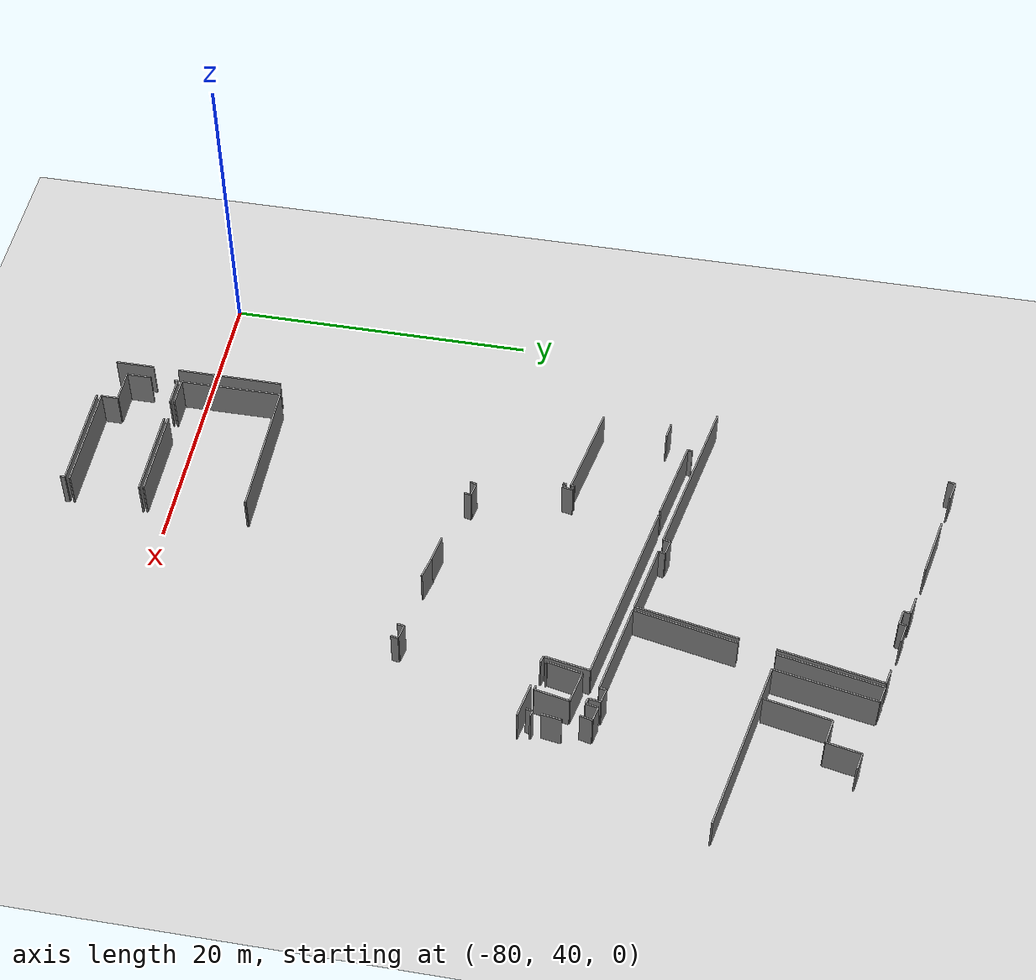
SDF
<sdf version="1.6">
 <world name="default">
  <model name="ground_plane">
   <static>1</static>
   <link name="link">
    <collision name="collision">
     <geometry><plane><normal>0 0 1</normal><size>100 100</size></plane></geometry>
     <surface><friction><ode><mu>100</mu><mu2>50</mu2></ode></friction></surface>
    </collision>
    <visual name="visual">
     <cast_shadows>0</cast_shadows>
     <geometry><plane><normal>0 0 1</normal><size>100 100</size></plane></geometry>
     <material>
      <script><uri>file://media/materials/scripts/gazebo.material</uri><name>Gazebo/Grey</name></script>
     </material>
    </visual>
   </link>
  </model>
  <model name="0510045922_A-40">
   <static>1</static>
   <link name="Wall_85">
    <collision name="Wall_85_Collision">
     <geometry><box><size>0.470527788485 0.1 2.5</size></box></geometry>
     <pose>0.235263894243 0 1.25 0 0 0</pose>
    </collision>
    <visual name="Wall_85_Visual">
     <pose>0.235263894243 0 1.25 0 0 0</pose>
     <geometry><box><size>0.470527788485 0.1 2.5</size></box></geometry>
     <material>
      <script><uri>file://media/materials/scripts/gazebo.material</uri><name>Gazebo/Grey</name></script>
      <ambient>1 1 1 1</ambient>
     </material>
    </visual>
    <pose>63.0118065705 -12.0720340599 0 0 0 1.36736206505</pose>
   </link>
   <link name="Wall_86">
    <collision name="Wall_86_Collision">
     <geometry><box><size>1.2657326112 0.1 2.5</size></box></geometry>
     <pose>0.632866305599 0 1.25 0 0 0</pose>
    </collision>
    <visual name="Wall_86_Visual">
     <pose>0.632866305599 0 1.25 0 0 0</pose>
     <geometry><box><size>1.2657326112 0.1 2.5</size></box></geometry>
     <material>
      <script><uri>file://media/materials/scripts/gazebo.material</uri><name>Gazebo/Grey</name></script>
      <ambient>1 1 1 1</ambient>
     </material>
    </visual>
    <pose>63.1068691618 -11.6112092521 0 0 0 -0.2044451851</pose>
   </link>
   <link name="Wall_87">
    <collision name="Wall_87_Collision">
     <geometry><box><size>3.95038757422 0.1 2.5</size></box></geometry>
     <pose>1.97519378711 0 1.25 0 0 0</pose>
    </collision>
    <visual name="Wall_87_Visual">
     <pose>1.97519378711 0 1.25 0 0 0</pose>
     <geometry><box><size>3.95038757422 0.1 2.5</size></box></geometry>
     <material>
      <script><uri>file://media/materials/scripts/gazebo.material</uri><name>Gazebo/Grey</name></script>
      <ambient>1 1 1 1</ambient>
     </material>
    </visual>
    <pose>66.542593887 -12.2832560208 0 0 0 -0.197723643828</pose>
   </link>
   <link name="Wall_88">
    <collision name="Wall_88_Collision">
     <geometry><box><size>1.24017899547 0.1 2.5</size></box></geometry>
     <pose>0.620089497734 0 1.25 0 0 0</pose>
    </collision>
    <visual name="Wall_88_Visual">
     <pose>0.620089497734 0 1.25 0 0 0</pose>
     <geometry><box><size>1.24017899547 0.1 2.5</size></box></geometry>
     <material>
      <script><uri>file://media/materials/scripts/gazebo.material</uri><name>Gazebo/Grey</name></script>
      <ambient>1 1 1 1</ambient>
     </material>
    </visual>
    <pose>72.6891275338 -13.4875516299 0 0 0 -0.196792641799</pose>
   </link>
   <link name="Wall_89">
    <collision name="Wall_89_Collision">
     <geometry><box><size>0.444732933613 0.1 2.5</size></box></geometry>
     <pose>0.222366466807 0 1.25 0 0 0</pose>
    </collision>
    <visual name="Wall_89_Visual">
     <pose>0.222366466807 0 1.25 0 0 0</pose>
     <geometry><box><size>0.444732933613 0.1 2.5</size></box></geometry>
     <material>
      <script><uri>file://media/materials/scripts/gazebo.material</uri><name>Gazebo/Grey</name></script>
      <ambient>1 1 1 1</ambient>
     </material>
    </visual>
    <pose>73.9053695113 -13.7300374913 0 0 0 -1.65146948263</pose>
   </link>
   <link name="Wall_90">
    <collision name="Wall_90_Collision">
     <geometry><box><size>0.945616723904 0.1 2.5</size></box></geometry>
     <pose>0.472808361952 0 1.25 0 0 0</pose>
    </collision>
    <visual name="Wall_90_Visual">
     <pose>0.472808361952 0 1.25 0 0 0</pose>
     <geometry><box><size>0.945616723904 0.1 2.5</size></box></geometry>
     <material>
      <script><uri>file://media/materials/scripts/gazebo.material</uri><name>Gazebo/Grey</name></script>
      <ambient>1 1 1 1</ambient>
     </material>
    </visual>
    <pose>73.869530406 -14.1733240135 0 0 0 -0.206831728713</pose>
   </link>
   <link name="Wall_91">
    <collision name="Wall_91_Collision">
     <geometry><box><size>0.440850563217 0.1 2.5</size></box></geometry>
     <pose>0.220425281608 0 1.25 0 0 0</pose>
    </collision>
    <visual name="Wall_91_Visual">
     <pose>0.220425281608 0 1.25 0 0 0</pose>
     <geometry><box><size>0.440850563217 0.1 2.5</size></box></geometry>
     <material>
      <script><uri>file://media/materials/scripts/gazebo.material</uri><name>Gazebo/Grey</name></script>
      <ambient>1 1 1 1</ambient>
     </material>
    </visual>
    <pose>74.7949926924 -14.367516045 0 0 0 1.34399747874</pose>
   </link>
   <link name="Wall_92">
    <collision name="Wall_92_Collision">
     <geometry><box><size>1.28580077034 0.1 2.5</size></box></geometry>
     <pose>0.642900385171 0 1.25 0 0 0</pose>
    </collision>
    <visual name="Wall_92_Visual">
     <pose>0.642900385171 0 1.25 0 0 0</pose>
     <geometry><box><size>1.28580077034 0.1 2.5</size></box></geometry>
     <material>
      <script><uri>file://media/materials/scripts/gazebo.material</uri><name>Gazebo/Grey</name></script>
      <ambient>1 1 1 1</ambient>
     </material>
    </visual>
    <pose>74.8941221326 -13.9379551376 0 0 0 -0.184291471257</pose>
   </link>
   <link name="Wall_93">
    <collision name="Wall_93_Collision">
     <geometry><box><size>1.02407150995 0.1 2.5</size></box></geometry>
     <pose>0.512035754976 0 1.25 0 0 0</pose>
    </collision>
    <visual name="Wall_93_Visual">
     <pose>0.512035754976 0 1.25 0 0 0</pose>
     <geometry><box><size>1.02407150995 0.1 2.5</size></box></geometry>
     <material>
      <script><uri>file://media/materials/scripts/gazebo.material</uri><name>Gazebo/Grey</name></script>
      <ambient>1 1 1 1</ambient>
     </material>
    </visual>
    <pose>78.38042829 -14.6087310161 0 0 0 -0.205719370914</pose>
   </link>
   <link name="Wall_94">
    <collision name="Wall_94_Collision">
     <geometry><box><size>6.83988586814 0.1 2.5</size></box></geometry>
     <pose>3.41994293407 0 1.25 0 0 0</pose>
    </collision>
    <visual name="Wall_94_Visual">
     <pose>3.41994293407 0 1.25 0 0 0</pose>
     <geometry><box><size>6.83988586814 0.1 2.5</size></box></geometry>
     <material>
      <script><uri>file://media/materials/scripts/gazebo.material</uri><name>Gazebo/Grey</name></script>
      <ambient>1 1 1 1</ambient>
     </material>
    </visual>
    <pose>79.382906526 -14.8179195526 0 0 0 -1.76499249226</pose>
   </link>
   <link name="Wall_95">
    <collision name="Wall_95_Collision">
     <geometry><box><size>6.72798577804 0.1 2.5</size></box></geometry>
     <pose>3.36399288902 0 1.25 0 0 0</pose>
    </collision>
    <visual name="Wall_95_Visual">
     <pose>3.36399288902 0 1.25 0 0 0</pose>
     <geometry><box><size>6.72798577804 0.1 2.5</size></box></geometry>
     <material>
      <script><uri>file://media/materials/scripts/gazebo.material</uri><name>Gazebo/Grey</name></script>
      <ambient>1 1 1 1</ambient>
     </material>
    </visual>
    <pose>77.6471246108 -23.8374277181 0 0 0 -1.76164218258</pose>
   </link>
   <link name="Wall_96">
    <collision name="Wall_96_Collision">
     <geometry><box><size>4.60174933027 0.1 2.5</size></box></geometry>
     <pose>2.30087466514 0 1.25 0 0 0</pose>
    </collision>
    <visual name="Wall_96_Visual">
     <pose>2.30087466514 0 1.25 0 0 0</pose>
     <geometry><box><size>4.60174933027 0.1 2.5</size></box></geometry>
     <material>
      <script><uri>file://media/materials/scripts/gazebo.material</uri><name>Gazebo/Grey</name></script>
      <ambient>1 1 1 1</ambient>
     </material>
    </visual>
    <pose>76.3708966131 -30.4432611044 0 0 0 2.95053414453</pose>
   </link>
   <link name="Wall_97">
    <collision name="Wall_97_Collision">
     <geometry><box><size>0.438323030585 0.1 2.5</size></box></geometry>
     <pose>0.219161515292 0 1.25 0 0 0</pose>
    </collision>
    <visual name="Wall_97_Visual">
     <pose>0.219161515292 0 1.25 0 0 0</pose>
     <geometry><box><size>0.438323030585 0.1 2.5</size></box></geometry>
     <material>
      <script><uri>file://media/materials/scripts/gazebo.material</uri><name>Gazebo/Grey</name></script>
      <ambient>1 1 1 1</ambient>
     </material>
    </visual>
    <pose>71.8528817437 -29.5693969626 0 0 0 1.39535151213</pose>
   </link>
   <link name="Wall_98">
    <collision name="Wall_98_Collision">
     <geometry><box><size>0.98778316563 0.1 2.5</size></box></geometry>
     <pose>0.493891582815 0 1.25 0 0 0</pose>
    </collision>
    <visual name="Wall_98_Visual">
     <pose>0.493891582815 0 1.25 0 0 0</pose>
     <geometry><box><size>0.98778316563 0.1 2.5</size></box></geometry>
     <material>
      <script><uri>file://media/materials/scripts/gazebo.material</uri><name>Gazebo/Grey</name></script>
      <ambient>1 1 1 1</ambient>
     </material>
    </visual>
    <pose>71.9293893372 -29.1378026307 0 0 0 2.93556748207</pose>
   </link>
   <link name="Wall_99">
    <collision name="Wall_99_Collision">
     <geometry><box><size>0.470670016431 0.1 2.5</size></box></geometry>
     <pose>0.235335008216 0 1.25 0 0 0</pose>
    </collision>
    <visual name="Wall_99_Visual">
     <pose>0.235335008216 0 1.25 0 0 0</pose>
     <geometry><box><size>0.470670016431 0.1 2.5</size></box></geometry>
     <material>
      <script><uri>file://media/materials/scripts/gazebo.material</uri><name>Gazebo/Grey</name></script>
      <ambient>1 1 1 1</ambient>
     </material>
    </visual>
    <pose>70.9624960285 -28.9357310796 0 0 0 -1.79350695638</pose>
   </link>
   <link name="Wall_100">
    <collision name="Wall_100_Collision">
     <geometry><box><size>11.0022777959 0.1 2.5</size></box></geometry>
     <pose>5.50113889794 0 1.25 0 0 0</pose>
    </collision>
    <visual name="Wall_100_Visual">
     <pose>5.50113889794 0 1.25 0 0 0</pose>
     <geometry><box><size>11.0022777959 0.1 2.5</size></box></geometry>
     <material>
      <script><uri>file://media/materials/scripts/gazebo.material</uri><name>Gazebo/Grey</name></script>
      <ambient>1 1 1 1</ambient>
     </material>
    </visual>
    <pose>70.8585372053 -29.394776641 0 0 0 2.94810712895</pose>
   </link>
   <link name="Wall_108">
    <collision name="Wall_108_Collision">
     <geometry><box><size>6.77006494928 0.1 2.5</size></box></geometry>
     <pose>3.38503247464 0 1.25 0 0 0</pose>
    </collision>
    <visual name="Wall_108_Visual">
     <pose>3.38503247464 0 1.25 0 0 0</pose>
     <geometry><box><size>6.77006494928 0.1 2.5</size></box></geometry>
     <material>
      <script><uri>file://media/materials/scripts/gazebo.material</uri><name>Gazebo/Grey</name></script>
      <ambient>1 1 1 1</ambient>
     </material>
    </visual>
    <pose>76.6443921967 -30.4981635636 0 0 0 1.37265709748</pose>
   </link>
   <link name="Wall_109">
    <collision name="Wall_109_Collision">
     <geometry><box><size>6.77834414775 0.1 2.5</size></box></geometry>
     <pose>3.38917207388 0 1.25 0 0 0</pose>
    </collision>
    <visual name="Wall_109_Visual">
     <pose>3.38917207388 0 1.25 0 0 0</pose>
     <geometry><box><size>6.77834414775 0.1 2.5</size></box></geometry>
     <material>
      <script><uri>file://media/materials/scripts/gazebo.material</uri><name>Gazebo/Grey</name></script>
      <ambient>1 1 1 1</ambient>
     </material>
    </visual>
    <pose>78.4152506831 -21.5111901887 0 0 0 1.38363781114</pose>
   </link>
   <link name="Wall_110">
    <collision name="Wall_110_Collision">
     <geometry><box><size>1.13357555135 0.1 2.5</size></box></geometry>
     <pose>0.566787775673 0 1.25 0 0 0</pose>
    </collision>
    <visual name="Wall_110_Visual">
     <pose>0.566787775673 0 1.25 0 0 0</pose>
     <geometry><box><size>1.13357555135 0.1 2.5</size></box></geometry>
     <material>
      <script><uri>file://media/materials/scripts/gazebo.material</uri><name>Gazebo/Grey</name></script>
      <ambient>1 1 1 1</ambient>
     </material>
    </visual>
    <pose>79.6764821758 -14.8512168774 0 0 0 -0.208697246725</pose>
   </link>
   <link name="Wall_111">
    <collision name="Wall_111_Collision">
     <geometry><box><size>6.689226407 0.1 2.5</size></box></geometry>
     <pose>3.3446132035 0 1.25 0 0 0</pose>
    </collision>
    <visual name="Wall_111_Visual">
     <pose>3.3446132035 0 1.25 0 0 0</pose>
     <geometry><box><size>6.689226407 0.1 2.5</size></box></geometry>
     <material>
      <script><uri>file://media/materials/scripts/gazebo.material</uri><name>Gazebo/Grey</name></script>
      <ambient>1 1 1 1</ambient>
     </material>
    </visual>
    <pose>80.7854610154 -15.0860773972 0 0 0 -1.75703594367</pose>
   </link>
   <link name="Wall_112">
    <collision name="Wall_112_Collision">
     <geometry><box><size>11.5195300793 0.1 2.5</size></box></geometry>
     <pose>5.75976503967 0 1.25 0 0 0</pose>
    </collision>
    <visual name="Wall_112_Visual">
     <pose>5.75976503967 0 1.25 0 0 0</pose>
     <geometry><box><size>11.5195300793 0.1 2.5</size></box></geometry>
     <material>
      <script><uri>file://media/materials/scripts/gazebo.material</uri><name>Gazebo/Grey</name></script>
      <ambient>1 1 1 1</ambient>
     </material>
    </visual>
    <pose>79.5468513694 -21.6596301709 0 0 0 -0.196110352566</pose>
   </link>
   <link name="Wall_120">
    <collision name="Wall_120_Collision">
     <geometry><box><size>0.808861217675 0.1 2.5</size></box></geometry>
     <pose>0.404430608837 0 1.25 0 0 0</pose>
    </collision>
    <visual name="Wall_120_Visual">
     <pose>0.404430608837 0 1.25 0 0 0</pose>
     <geometry><box><size>0.808861217675 0.1 2.5</size></box></geometry>
     <material>
      <script><uri>file://media/materials/scripts/gazebo.material</uri><name>Gazebo/Grey</name></script>
      <ambient>1 1 1 1</ambient>
     </material>
    </visual>
    <pose>84.8873864142 -32.4944779818 0 0 0 1.35287723592</pose>
   </link>
   <link name="Wall_121">
    <collision name="Wall_121_Collision">
     <geometry><box><size>0.952293361038 0.1 2.5</size></box></geometry>
     <pose>0.476146680519 0 1.25 0 0 0</pose>
    </collision>
    <visual name="Wall_121_Visual">
     <pose>0.476146680519 0 1.25 0 0 0</pose>
     <geometry><box><size>0.952293361038 0.1 2.5</size></box></geometry>
     <material>
      <script><uri>file://media/materials/scripts/gazebo.material</uri><name>Gazebo/Grey</name></script>
      <ambient>1 1 1 1</ambient>
     </material>
    </visual>
    <pose>85.0622609138 -31.7047467751 0 0 0 2.93514117212</pose>
   </link>
   <link name="Wall_122">
    <collision name="Wall_122_Collision">
     <geometry><box><size>0.797836360445 0.1 2.5</size></box></geometry>
     <pose>0.398918180223 0 1.25 0 0 0</pose>
    </collision>
    <visual name="Wall_122_Visual">
     <pose>0.398918180223 0 1.25 0 0 0</pose>
     <geometry><box><size>0.797836360445 0.1 2.5</size></box></geometry>
     <material>
      <script><uri>file://media/materials/scripts/gazebo.material</uri><name>Gazebo/Grey</name></script>
      <ambient>1 1 1 1</ambient>
     </material>
    </visual>
    <pose>84.1301899981 -31.5095380314 0 0 0 -1.78068811193</pose>
   </link>
   <link name="Wall_123">
    <collision name="Wall_123_Collision">
     <geometry><box><size>0.396114944568 0.1 2.5</size></box></geometry>
     <pose>0.198057472284 0 1.25 0 0 0</pose>
    </collision>
    <visual name="Wall_123_Visual">
     <pose>0.198057472284 0 1.25 0 0 0</pose>
     <geometry><box><size>0.396114944568 0.1 2.5</size></box></geometry>
     <material>
      <script><uri>file://media/materials/scripts/gazebo.material</uri><name>Gazebo/Grey</name></script>
      <ambient>1 1 1 1</ambient>
     </material>
    </visual>
    <pose>83.9639575523 -32.2898646502 0 0 0 2.88400765441</pose>
   </link>
   <link name="Wall_124">
    <collision name="Wall_124_Collision">
     <geometry><box><size>0.773742580203 0.1 2.5</size></box></geometry>
     <pose>0.386871290101 0 1.25 0 0 0</pose>
    </collision>
    <visual name="Wall_124_Visual">
     <pose>0.386871290101 0 1.25 0 0 0</pose>
     <geometry><box><size>0.773742580203 0.1 2.5</size></box></geometry>
     <material>
      <script><uri>file://media/materials/scripts/gazebo.material</uri><name>Gazebo/Grey</name></script>
      <ambient>1 1 1 1</ambient>
     </material>
    </visual>
    <pose>83.5809112283 -32.1889559637 0 0 0 1.43006071185</pose>
   </link>
   <link name="Wall_125">
    <collision name="Wall_125_Collision">
     <geometry><box><size>0.937610466126 0.1 2.5</size></box></geometry>
     <pose>0.468805233063 0 1.25 0 0 0</pose>
    </collision>
    <visual name="Wall_125_Visual">
     <pose>0.468805233063 0 1.25 0 0 0</pose>
     <geometry><box><size>0.937610466126 0.1 2.5</size></box></geometry>
     <material>
      <script><uri>file://media/materials/scripts/gazebo.material</uri><name>Gazebo/Grey</name></script>
      <ambient>1 1 1 1</ambient>
     </material>
    </visual>
    <pose>83.6894452564 -31.4228633158 0 0 0 2.92298251568</pose>
   </link>
   <link name="Wall_126">
    <collision name="Wall_126_Collision">
     <geometry><box><size>0.445595003614 0.1 2.5</size></box></geometry>
     <pose>0.222797501807 0 1.25 0 0 0</pose>
    </collision>
    <visual name="Wall_126_Visual">
     <pose>0.222797501807 0 1.25 0 0 0</pose>
     <geometry><box><size>0.445595003614 0.1 2.5</size></box></geometry>
     <material>
      <script><uri>file://media/materials/scripts/gazebo.material</uri><name>Gazebo/Grey</name></script>
      <ambient>1 1 1 1</ambient>
     </material>
    </visual>
    <pose>82.7741500921 -31.2195208744 0 0 0 -1.76830375598</pose>
   </link>
   <link name="Wall_127">
    <collision name="Wall_127_Collision">
     <geometry><box><size>6.15233882976 0.1 2.5</size></box></geometry>
     <pose>3.07616941488 0 1.25 0 0 0</pose>
    </collision>
    <visual name="Wall_127_Visual">
     <pose>3.07616941488 0 1.25 0 0 0</pose>
     <geometry><box><size>6.15233882976 0.1 2.5</size></box></geometry>
     <material>
      <script><uri>file://media/materials/scripts/gazebo.material</uri><name>Gazebo/Grey</name></script>
      <ambient>1 1 1 1</ambient>
     </material>
    </visual>
    <pose>82.6867128423 -31.6564529453 0 0 0 2.95219420078</pose>
   </link>
   <link name="Wall_131">
    <collision name="Wall_131_Collision">
     <geometry><box><size>4.32130943385 0.1 2.5</size></box></geometry>
     <pose>2.16065471693 0 1.25 0 0 0</pose>
    </collision>
    <visual name="Wall_131_Visual">
     <pose>2.16065471693 0 1.25 0 0 0</pose>
     <geometry><box><size>4.32130943385 0.1 2.5</size></box></geometry>
     <material>
      <script><uri>file://media/materials/scripts/gazebo.material</uri><name>Gazebo/Grey</name></script>
      <ambient>1 1 1 1</ambient>
     </material>
    </visual>
    <pose>81.7637923365 -21.95981445 0 0 0 1.37341230243</pose>
   </link>
   <link name="Wall_132">
    <collision name="Wall_132_Collision">
     <geometry><box><size>1.62175686121 0.1 2.5</size></box></geometry>
     <pose>0.810878430606 0 1.25 0 0 0</pose>
    </collision>
    <visual name="Wall_132_Visual">
     <pose>0.810878430606 0 1.25 0 0 0</pose>
     <geometry><box><size>1.62175686121 0.1 2.5</size></box></geometry>
     <material>
      <script><uri>file://media/materials/scripts/gazebo.material</uri><name>Gazebo/Grey</name></script>
      <ambient>1 1 1 1</ambient>
     </material>
    </visual>
    <pose>82.611221961 -17.7224121497 0 0 0 -0.180274050689</pose>
   </link>
   <link name="Wall_133">
    <collision name="Wall_133_Collision">
     <geometry><box><size>2.2261889046 0.1 2.5</size></box></geometry>
     <pose>1.1130944523 0 1.25 0 0 0</pose>
    </collision>
    <visual name="Wall_133_Visual">
     <pose>1.1130944523 0 1.25 0 0 0</pose>
     <geometry><box><size>2.2261889046 0.1 2.5</size></box></geometry>
     <material>
      <script><uri>file://media/materials/scripts/gazebo.material</uri><name>Gazebo/Grey</name></script>
      <ambient>1 1 1 1</ambient>
     </material>
    </visual>
    <pose>84.2066975917 -18.0131918409 0 0 0 1.37615496406</pose>
   </link>
   <link name="Wall_134">
    <collision name="Wall_134_Collision">
     <geometry><box><size>1.08111293065 0.1 2.5</size></box></geometry>
     <pose>0.540556465324 0 1.25 0 0 0</pose>
    </collision>
    <visual name="Wall_134_Visual">
     <pose>0.540556465324 0 1.25 0 0 0</pose>
     <geometry><box><size>1.08111293065 0.1 2.5</size></box></geometry>
     <material>
      <script><uri>file://media/materials/scripts/gazebo.material</uri><name>Gazebo/Grey</name></script>
      <ambient>1 1 1 1</ambient>
     </material>
    </visual>
    <pose>84.6372752113 -15.8290398424 0 0 0 -0.19831772853</pose>
   </link>
   <link name="Wall_660">
    <collision name="Wall_660_Collision">
     <geometry><box><size>7.00692635191 0.1 2.5</size></box></geometry>
     <pose>3.50346317595 0 1.25 0 0 0</pose>
    </collision>
    <visual name="Wall_660_Visual">
     <pose>3.50346317595 0 1.25 0 0 0</pose>
     <geometry><box><size>7.00692635191 0.1 2.5</size></box></geometry>
     <material>
      <script><uri>file://media/materials/scripts/gazebo.material</uri><name>Gazebo/Grey</name></script>
      <ambient>1 1 1 1</ambient>
     </material>
    </visual>
    <pose>62.2858740548 -56.1495583656 0 0 0 -1.57079632679</pose>
   </link>
   <link name="Wall_661">
    <collision name="Wall_661_Collision">
     <geometry><box><size>2.56872339074 0.1 2.5</size></box></geometry>
     <pose>1.28436169537 0 1.25 0 0 0</pose>
    </collision>
    <visual name="Wall_661_Visual">
     <pose>1.28436169537 0 1.25 0 0 0</pose>
     <geometry><box><size>2.56872339074 0.1 2.5</size></box></geometry>
     <material>
      <script><uri>file://media/materials/scripts/gazebo.material</uri><name>Gazebo/Grey</name></script>
      <ambient>1 1 1 1</ambient>
     </material>
    </visual>
    <pose>62.2858740548 -64.8292304759 0 0 0 -1.57079632679</pose>
   </link>
   <link name="Wall_689">
    <collision name="Wall_689_Collision">
     <geometry><box><size>7.12156065324 0.1 2.5</size></box></geometry>
     <pose>3.56078032662 0 1.25 0 0 0</pose>
    </collision>
    <visual name="Wall_689_Visual">
     <pose>3.56078032662 0 1.25 0 0 0</pose>
     <geometry><box><size>7.12156065324 0.1 2.5</size></box></geometry>
     <material>
      <script><uri>file://media/materials/scripts/gazebo.material</uri><name>Gazebo/Grey</name></script>
      <ambient>1 1 1 1</ambient>
     </material>
    </visual>
    <pose>65.392438203 -67.8717417551 0 0 0 0.0</pose>
   </link>
   <link name="Wall_690">
    <collision name="Wall_690_Collision">
     <geometry><box><size>0.30196352545 0.1 2.5</size></box></geometry>
     <pose>0.150981762725 0 1.25 0 0 0</pose>
    </collision>
    <visual name="Wall_690_Visual">
     <pose>0.150981762725 0 1.25 0 0 0</pose>
     <geometry><box><size>0.30196352545 0.1 2.5</size></box></geometry>
     <material>
      <script><uri>file://media/materials/scripts/gazebo.material</uri><name>Gazebo/Grey</name></script>
      <ambient>1 1 1 1</ambient>
     </material>
    </visual>
    <pose>72.5139988562 -67.8717417551 0 0 0 -1.57079632679</pose>
   </link>
   <link name="Wall_694">
    <collision name="Wall_694_Collision">
     <geometry><box><size>9.32782614221 0.1 2.5</size></box></geometry>
     <pose>4.66391307111 0 1.25 0 0 0</pose>
    </collision>
    <visual name="Wall_694_Visual">
     <pose>4.66391307111 0 1.25 0 0 0</pose>
     <geometry><box><size>9.32782614221 0.1 2.5</size></box></geometry>
     <material>
      <script><uri>file://media/materials/scripts/gazebo.material</uri><name>Gazebo/Grey</name></script>
      <ambient>1 1 1 1</ambient>
     </material>
    </visual>
    <pose>63.1983732605 -55.9528245536 0 0 0 0.0</pose>
   </link>
   <link name="Wall_695">
    <collision name="Wall_695_Collision">
     <geometry><box><size>0.08692889369 0.1 2.5</size></box></geometry>
     <pose>0.043464446845 0 1.25 0 0 0</pose>
    </collision>
    <visual name="Wall_695_Visual">
     <pose>0.043464446845 0 1.25 0 0 0</pose>
     <geometry><box><size>0.08692889369 0.1 2.5</size></box></geometry>
     <material>
      <script><uri>file://media/materials/scripts/gazebo.material</uri><name>Gazebo/Grey</name></script>
      <ambient>1 1 1 1</ambient>
     </material>
    </visual>
    <pose>72.5261994027 -55.9528245536 0 0 0 -1.57079632679</pose>
   </link>
   <link name="Wall_696">
    <collision name="Wall_696_Collision">
     <geometry><box><size>5.94954565673 0.1 2.5</size></box></geometry>
     <pose>2.97477282837 0 1.25 0 0 0</pose>
    </collision>
    <visual name="Wall_696_Visual">
     <pose>2.97477282837 0 1.25 0 0 0</pose>
     <geometry><box><size>5.94954565673 0.1 2.5</size></box></geometry>
     <material>
      <script><uri>file://media/materials/scripts/gazebo.material</uri><name>Gazebo/Grey</name></script>
      <ambient>1 1 1 1</ambient>
     </material>
    </visual>
    <pose>72.5261994027 -62.6677003241 0 0 0 3.14159265359</pose>
   </link>
   <link name="Wall_697">
    <collision name="Wall_697_Collision">
     <geometry><box><size>1.84075745059 0.1 2.5</size></box></geometry>
     <pose>0.920378725297 0 1.25 0 0 0</pose>
    </collision>
    <visual name="Wall_697_Visual">
     <pose>0.920378725297 0 1.25 0 0 0</pose>
     <geometry><box><size>1.84075745059 0.1 2.5</size></box></geometry>
     <material>
      <script><uri>file://media/materials/scripts/gazebo.material</uri><name>Gazebo/Grey</name></script>
      <ambient>1 1 1 1</ambient>
     </material>
    </visual>
    <pose>65.0749698164 -62.6677003241 0 0 0 3.14159265359</pose>
   </link>
   <link name="Wall_698">
    <collision name="Wall_698_Collision">
     <geometry><box><size>6.71497141129 0.1 2.5</size></box></geometry>
     <pose>3.35748570564 0 1.25 0 0 0</pose>
    </collision>
    <visual name="Wall_698_Visual">
     <pose>3.35748570564 0 1.25 0 0 0</pose>
     <geometry><box><size>6.71497141129 0.1 2.5</size></box></geometry>
     <material>
      <script><uri>file://media/materials/scripts/gazebo.material</uri><name>Gazebo/Grey</name></script>
      <ambient>1 1 1 1</ambient>
     </material>
    </visual>
    <pose>63.2342123658 -62.6677003241 0 0 0 1.57613354616</pose>
   </link>
   <link name="Wall_699">
    <collision name="Wall_699_Collision">
     <geometry><box><size>1.63792336532 0.1 2.5</size></box></geometry>
     <pose>0.818961682659 0 1.25 0 0 0</pose>
    </collision>
    <visual name="Wall_699_Visual">
     <pose>0.818961682659 0 1.25 0 0 0</pose>
     <geometry><box><size>1.63792336532 0.1 2.5</size></box></geometry>
     <material>
      <script><uri>file://media/materials/scripts/gazebo.material</uri><name>Gazebo/Grey</name></script>
      <ambient>1 1 1 1</ambient>
     </material>
    </visual>
    <pose>63.2263328462 -66.4145389846 0 0 0 1.57079632679</pose>
   </link>
   <link name="Wall_700">
    <collision name="Wall_700_Collision">
     <geometry><box><size>0.213763741501 0.1 2.5</size></box></geometry>
     <pose>0.10688187075 0 1.25 0 0 0</pose>
    </collision>
    <visual name="Wall_700_Visual">
     <pose>0.10688187075 0 1.25 0 0 0</pose>
     <geometry><box><size>0.213763741501 0.1 2.5</size></box></geometry>
     <material>
      <script><uri>file://media/materials/scripts/gazebo.material</uri><name>Gazebo/Grey</name></script>
      <ambient>1 1 1 1</ambient>
     </material>
    </visual>
    <pose>63.2263328462 -63.1569930736 0 0 0 1.57079632679</pose>
   </link>
   <link name="Wall_701">
    <collision name="Wall_701_Collision">
     <geometry><box><size>1.86617525577 0.1 2.5</size></box></geometry>
     <pose>0.933087627883 0 1.25 0 0 0</pose>
    </collision>
    <visual name="Wall_701_Visual">
     <pose>0.933087627883 0 1.25 0 0 0</pose>
     <geometry><box><size>1.86617525577 0.1 2.5</size></box></geometry>
     <material>
      <script><uri>file://media/materials/scripts/gazebo.material</uri><name>Gazebo/Grey</name></script>
      <ambient>1 1 1 1</ambient>
     </material>
    </visual>
    <pose>63.2263328462 -62.9432293321 0 0 0 0.0</pose>
   </link>
   <link name="Wall_702">
    <collision name="Wall_702_Collision">
     <geometry><box><size>5.94674969816 0.1 2.5</size></box></geometry>
     <pose>2.97337484908 0 1.25 0 0 0</pose>
    </collision>
    <visual name="Wall_702_Visual">
     <pose>2.97337484908 0 1.25 0 0 0</pose>
     <geometry><box><size>5.94674969816 0.1 2.5</size></box></geometry>
     <material>
      <script><uri>file://media/materials/scripts/gazebo.material</uri><name>Gazebo/Grey</name></script>
      <ambient>1 1 1 1</ambient>
     </material>
    </visual>
    <pose>66.611221961 -62.9432293321 0 0 0 0.0</pose>
   </link>
   <link name="Wall_703">
    <collision name="Wall_703_Collision">
     <geometry><box><size>7.16146660736 0.1 2.5</size></box></geometry>
     <pose>3.58073330368 0 1.25 0 0 0</pose>
    </collision>
    <visual name="Wall_703_Visual">
     <pose>3.58073330368 0 1.25 0 0 0</pose>
     <geometry><box><size>7.16146660736 0.1 2.5</size></box></geometry>
     <material>
      <script><uri>file://media/materials/scripts/gazebo.material</uri><name>Gazebo/Grey</name></script>
      <ambient>1 1 1 1</ambient>
     </material>
    </visual>
    <pose>72.5579716591 -67.5563067929 0 0 0 3.14159265359</pose>
   </link>
   <link name="Wall_704">
    <collision name="Wall_704_Collision">
     <geometry><box><size>1.13058397407 0.1 2.5</size></box></geometry>
     <pose>0.565291987037 0 1.25 0 0 0</pose>
    </collision>
    <visual name="Wall_704_Visual">
     <pose>0.565291987037 0 1.25 0 0 0</pose>
     <geometry><box><size>1.13058397407 0.1 2.5</size></box></geometry>
     <material>
      <script><uri>file://media/materials/scripts/gazebo.material</uri><name>Gazebo/Grey</name></script>
      <ambient>1 1 1 1</ambient>
     </material>
    </visual>
    <pose>65.3965050518 -67.5563067929 0 0 0 1.57079632679</pose>
   </link>
   <link name="Wall_705">
    <collision name="Wall_705_Collision">
     <geometry><box><size>2.170201023 0.1 2.5</size></box></geometry>
     <pose>1.0851005115 0 1.25 0 0 0</pose>
    </collision>
    <visual name="Wall_705_Visual">
     <pose>1.0851005115 0 1.25 0 0 0</pose>
     <geometry><box><size>2.170201023 0.1 2.5</size></box></geometry>
     <material>
      <script><uri>file://media/materials/scripts/gazebo.material</uri><name>Gazebo/Grey</name></script>
      <ambient>1 1 1 1</ambient>
     </material>
    </visual>
    <pose>65.3965050518 -66.4257228188 0 0 0 3.13643926749</pose>
   </link>
   <link name="Wall_718">
    <collision name="Wall_718_Collision">
     <geometry><box><size>2.29014629132 0.1 2.5</size></box></geometry>
     <pose>1.14507314566 0 1.25 0 0 0</pose>
    </collision>
    <visual name="Wall_718_Visual">
     <pose>1.14507314566 0 1.25 0 0 0</pose>
     <geometry><box><size>2.29014629132 0.1 2.5</size></box></geometry>
     <material>
      <script><uri>file://media/materials/scripts/gazebo.material</uri><name>Gazebo/Grey</name></script>
      <ambient>1 1 1 1</ambient>
     </material>
    </visual>
    <pose>81.383033615 -35.0560843871 0 0 0 1.36615246655</pose>
   </link>
   <link name="Wall_719">
    <collision name="Wall_719_Collision">
     <geometry><box><size>2.13907169489 0.1 2.5</size></box></geometry>
     <pose>1.06953584744 0 1.25 0 0 0</pose>
    </collision>
    <visual name="Wall_719_Visual">
     <pose>1.06953584744 0 1.25 0 0 0</pose>
     <geometry><box><size>2.13907169489 0.1 2.5</size></box></geometry>
     <material>
      <script><uri>file://media/materials/scripts/gazebo.material</uri><name>Gazebo/Grey</name></script>
      <ambient>1 1 1 1</ambient>
     </material>
    </visual>
    <pose>81.8484336278 -32.8137256148 0 0 0 -0.205831621664</pose>
   </link>
   <link name="Wall_720">
    <collision name="Wall_720_Collision">
     <geometry><box><size>2.26855557264 0.1 2.5</size></box></geometry>
     <pose>1.13427778632 0 1.25 0 0 0</pose>
    </collision>
    <visual name="Wall_720_Visual">
     <pose>1.13427778632 0 1.25 0 0 0</pose>
     <geometry><box><size>2.26855557264 0.1 2.5</size></box></geometry>
     <material>
      <script><uri>file://media/materials/scripts/gazebo.material</uri><name>Gazebo/Grey</name></script>
      <ambient>1 1 1 1</ambient>
     </material>
    </visual>
    <pose>83.9423524179 -33.2509118638 0 0 0 -1.7663241264</pose>
   </link>
   <link name="Wall_721">
    <collision name="Wall_721_Collision">
     <geometry><box><size>0.289239210954 0.1 2.5</size></box></geometry>
     <pose>0.144619605477 0 1.25 0 0 0</pose>
    </collision>
    <visual name="Wall_721_Visual">
     <pose>0.144619605477 0 1.25 0 0 0</pose>
     <geometry><box><size>0.289239210954 0.1 2.5</size></box></geometry>
     <material>
      <script><uri>file://media/materials/scripts/gazebo.material</uri><name>Gazebo/Grey</name></script>
      <ambient>1 1 1 1</ambient>
     </material>
    </visual>
    <pose>83.5016076762 -35.4762407066 0 0 0 2.91558421507</pose>
   </link>
   <link name="Wall_722">
    <collision name="Wall_722_Collision">
     <geometry><box><size>0.146182435969 0.1 2.5</size></box></geometry>
     <pose>0.0730912179844 0 1.25 0 0 0</pose>
    </collision>
    <visual name="Wall_722_Visual">
     <pose>0.0730912179844 0 1.25 0 0 0</pose>
     <geometry><box><size>0.146182435969 0.1 2.5</size></box></geometry>
     <material>
      <script><uri>file://media/materials/scripts/gazebo.material</uri><name>Gazebo/Grey</name></script>
      <ambient>1 1 1 1</ambient>
     </material>
    </visual>
    <pose>81.525373324 -35.0893817119 0 0 0 2.91179629073</pose>
   </link>
   <link name="Wall_723">
    <collision name="Wall_723_Collision">
     <geometry><box><size>0.459184381316 0.1 2.5</size></box></geometry>
     <pose>0.229592190658 0 1.25 0 0 0</pose>
    </collision>
    <visual name="Wall_723_Visual">
     <pose>0.229592190658 0 1.25 0 0 0</pose>
     <geometry><box><size>0.459184381316 0.1 2.5</size></box></geometry>
     <material>
      <script><uri>file://media/materials/scripts/gazebo.material</uri><name>Gazebo/Grey</name></script>
      <ambient>1 1 1 1</ambient>
     </material>
    </visual>
    <pose>84.9372053123 -35.7375357438 0 0 0 1.31333173898</pose>
   </link>
   <link name="Wall_724">
    <collision name="Wall_724_Collision">
     <geometry><box><size>0.372806510615 0.1 2.5</size></box></geometry>
     <pose>0.186403255308 0 1.25 0 0 0</pose>
    </collision>
    <visual name="Wall_724_Visual">
     <pose>0.186403255308 0 1.25 0 0 0</pose>
     <geometry><box><size>0.372806510615 0.1 2.5</size></box></geometry>
     <material>
      <script><uri>file://media/materials/scripts/gazebo.material</uri><name>Gazebo/Grey</name></script>
      <ambient>1 1 1 1</ambient>
     </material>
    </visual>
    <pose>85.0541272161 -35.2934866874 0 0 0 -0.233237843283</pose>
   </link>
   <link name="Wall_727">
    <collision name="Wall_727_Collision">
     <geometry><box><size>1.30262997989 0.1 2.5</size></box></geometry>
     <pose>0.651314989947 0 1.25 0 0 0</pose>
    </collision>
    <visual name="Wall_727_Visual">
     <pose>0.651314989947 0 1.25 0 0 0</pose>
     <geometry><box><size>1.30262997989 0.1 2.5</size></box></geometry>
     <material>
      <script><uri>file://media/materials/scripts/gazebo.material</uri><name>Gazebo/Grey</name></script>
      <ambient>1 1 1 1</ambient>
     </material>
    </visual>
    <pose>85.1690156955 -34.7762343522 0 0 0 1.4203722829</pose>
   </link>
   <link name="Wall_741">
    <collision name="Wall_741_Collision">
     <geometry><box><size>1.82566219808 0.1 2.5</size></box></geometry>
     <pose>0.912831099039 0 1.25 0 0 0</pose>
    </collision>
    <visual name="Wall_741_Visual">
     <pose>0.912831099039 0 1.25 0 0 0</pose>
     <geometry><box><size>1.82566219808 0.1 2.5</size></box></geometry>
     <material>
      <script><uri>file://media/materials/scripts/gazebo.material</uri><name>Gazebo/Grey</name></script>
      <ambient>1 1 1 1</ambient>
     </material>
    </visual>
    <pose>74.9861345873 -43.4302344793 0 0 0 2.96271046252</pose>
   </link>
   <link name="Wall_742">
    <collision name="Wall_742_Collision">
     <geometry><box><size>0.471668246488 0.1 2.5</size></box></geometry>
     <pose>0.235834123244 0 1.25 0 0 0</pose>
    </collision>
    <visual name="Wall_742_Visual">
     <pose>0.235834123244 0 1.25 0 0 0</pose>
     <geometry><box><size>0.471668246488 0.1 2.5</size></box></geometry>
     <material>
      <script><uri>file://media/materials/scripts/gazebo.material</uri><name>Gazebo/Grey</name></script>
      <ambient>1 1 1 1</ambient>
     </material>
    </visual>
    <pose>69.3291478681 -42.4079303552 0 0 0 1.358498583</pose>
   </link>
   <link name="Wall_743">
    <collision name="Wall_743_Collision">
     <geometry><box><size>0.96231974867 0.1 2.5</size></box></geometry>
     <pose>0.481159874335 0 1.25 0 0 0</pose>
    </collision>
    <visual name="Wall_743_Visual">
     <pose>0.481159874335 0 1.25 0 0 0</pose>
     <geometry><box><size>0.96231974867 0.1 2.5</size></box></geometry>
     <material>
      <script><uri>file://media/materials/scripts/gazebo.material</uri><name>Gazebo/Grey</name></script>
      <ambient>1 1 1 1</ambient>
     </material>
    </visual>
    <pose>69.4285314863 -41.9468513694 0 0 0 2.98217581666</pose>
   </link>
   <link name="Wall_744">
    <collision name="Wall_744_Collision">
     <geometry><box><size>0.42784637113 0.1 2.5</size></box></geometry>
     <pose>0.213923185565 0 1.25 0 0 0</pose>
    </collision>
    <visual name="Wall_744_Visual">
     <pose>0.213923185565 0 1.25 0 0 0</pose>
     <geometry><box><size>0.42784637113 0.1 2.5</size></box></geometry>
     <material>
      <script><uri>file://media/materials/scripts/gazebo.material</uri><name>Gazebo/Grey</name></script>
      <ambient>1 1 1 1</ambient>
     </material>
    </visual>
    <pose>68.478413929 -41.7940903603 0 0 0 -1.83465154852</pose>
   </link>
   <link name="Wall_745">
    <collision name="Wall_745_Collision">
     <geometry><box><size>0.736069532529 0.1 2.5</size></box></geometry>
     <pose>0.368034766264 0 1.25 0 0 0</pose>
    </collision>
    <visual name="Wall_745_Visual">
     <pose>0.368034766264 0 1.25 0 0 0</pose>
     <geometry><box><size>0.736069532529 0.1 2.5</size></box></geometry>
     <material>
      <script><uri>file://media/materials/scripts/gazebo.material</uri><name>Gazebo/Grey</name></script>
      <ambient>1 1 1 1</ambient>
     </material>
    </visual>
    <pose>67.7334180594 -36.333074919 0 0 0 1.36879562545</pose>
   </link>
   <link name="Wall_746">
    <collision name="Wall_746_Collision">
     <geometry><box><size>12.8119710695 0.1 2.5</size></box></geometry>
     <pose>6.40598553477 0 1.25 0 0 0</pose>
    </collision>
    <visual name="Wall_746_Visual">
     <pose>6.40598553477 0 1.25 0 0 0</pose>
     <geometry><box><size>12.8119710695 0.1 2.5</size></box></geometry>
     <material>
      <script><uri>file://media/materials/scripts/gazebo.material</uri><name>Gazebo/Grey</name></script>
      <ambient>1 1 1 1</ambient>
     </material>
    </visual>
    <pose>68.9755861981 -29.945072123 0 0 0 -0.191403740065</pose>
   </link>
   <link name="Wall_747">
    <collision name="Wall_747_Collision">
     <geometry><box><size>2.98199567071 0.1 2.5</size></box></geometry>
     <pose>1.49099783535 0 1.25 0 0 0</pose>
    </collision>
    <visual name="Wall_747_Visual">
     <pose>1.49099783535 0 1.25 0 0 0</pose>
     <geometry><box><size>2.98199567071 0.1 2.5</size></box></geometry>
     <material>
      <script><uri>file://media/materials/scripts/gazebo.material</uri><name>Gazebo/Grey</name></script>
      <ambient>1 1 1 1</ambient>
     </material>
    </visual>
    <pose>81.5535870878 -32.382385461 0 0 0 -1.74712758691</pose>
   </link>
   <link name="Wall_748">
    <collision name="Wall_748_Collision">
     <geometry><box><size>0.465387310574 0.1 2.5</size></box></geometry>
     <pose>0.232693655287 0 1.25 0 0 0</pose>
    </collision>
    <visual name="Wall_748_Visual">
     <pose>0.232693655287 0 1.25 0 0 0</pose>
     <geometry><box><size>0.465387310574 0.1 2.5</size></box></geometry>
     <material>
      <script><uri>file://media/materials/scripts/gazebo.material</uri><name>Gazebo/Grey</name></script>
      <ambient>1 1 1 1</ambient>
     </material>
    </visual>
    <pose>81.0304886573 -35.3181419584 0 0 0 -0.252264267427</pose>
   </link>
   <link name="Wall_749">
    <collision name="Wall_749_Collision">
     <geometry><box><size>2.33240876975 0.1 2.5</size></box></geometry>
     <pose>1.16620438487 0 1.25 0 0 0</pose>
    </collision>
    <visual name="Wall_749_Visual">
     <pose>1.16620438487 0 1.25 0 0 0</pose>
     <geometry><box><size>2.33240876975 0.1 2.5</size></box></geometry>
     <material>
      <script><uri>file://media/materials/scripts/gazebo.material</uri><name>Gazebo/Grey</name></script>
      <ambient>1 1 1 1</ambient>
     </material>
    </visual>
    <pose>83.2347207219 -35.7088136239 0 0 0 -0.196326955854</pose>
   </link>
   <link name="Wall_758">
    <collision name="Wall_758_Collision">
     <geometry><box><size>0.487068886439 0.1 2.5</size></box></geometry>
     <pose>0.243534443219 0 1.25 0 0 0</pose>
    </collision>
    <visual name="Wall_758_Visual">
     <pose>0.243534443219 0 1.25 0 0 0</pose>
     <geometry><box><size>0.487068886439 0.1 2.5</size></box></geometry>
     <material>
      <script><uri>file://media/materials/scripts/gazebo.material</uri><name>Gazebo/Grey</name></script>
      <ambient>1 1 1 1</ambient>
     </material>
    </visual>
    <pose>81.1397852195 -44.7011247379 0 0 0 1.37329842328</pose>
   </link>
   <link name="Wall_759">
    <collision name="Wall_759_Collision">
     <geometry><box><size>0.972585868824 0.1 2.5</size></box></geometry>
     <pose>0.486292934412 0 1.25 0 0 0</pose>
    </collision>
    <visual name="Wall_759_Visual">
     <pose>0.486292934412 0 1.25 0 0 0</pose>
     <geometry><box><size>0.972585868824 0.1 2.5</size></box></geometry>
     <material>
      <script><uri>file://media/materials/scripts/gazebo.material</uri><name>Gazebo/Grey</name></script>
      <ambient>1 1 1 1</ambient>
     </material>
    </visual>
    <pose>81.235356167 -44.2235241787 0 0 0 2.95362787513</pose>
   </link>
   <link name="Wall_760">
    <collision name="Wall_760_Collision">
     <geometry><box><size>0.455602370368 0.1 2.5</size></box></geometry>
     <pose>0.227801185184 0 1.25 0 0 0</pose>
    </collision>
    <visual name="Wall_760_Visual">
     <pose>0.227801185184 0 1.25 0 0 0</pose>
     <geometry><box><size>0.455602370368 0.1 2.5</size></box></geometry>
     <material>
      <script><uri>file://media/materials/scripts/gazebo.material</uri><name>Gazebo/Grey</name></script>
      <ambient>1 1 1 1</ambient>
     </material>
    </visual>
    <pose>80.2799008706 -44.0417868717 0 0 0 -1.73952198611</pose>
   </link>
   <link name="Wall_761">
    <collision name="Wall_761_Collision">
     <geometry><box><size>1.39212611202 0.1 2.5</size></box></geometry>
     <pose>0.696063056011 0 1.25 0 0 0</pose>
    </collision>
    <visual name="Wall_761_Visual">
     <pose>0.696063056011 0 1.25 0 0 0</pose>
     <geometry><box><size>1.39212611202 0.1 2.5</size></box></geometry>
     <material>
      <script><uri>file://media/materials/scripts/gazebo.material</uri><name>Gazebo/Grey</name></script>
      <ambient>1 1 1 1</ambient>
     </material>
    </visual>
    <pose>76.3378534664 -43.763207727 0 0 0 2.9000680552</pose>
   </link>
   <link name="Wall_763">
    <collision name="Wall_763_Collision">
     <geometry><box><size>1.10144817289 0.1 2.5</size></box></geometry>
     <pose>0.550724086444 0 1.25 0 0 0</pose>
    </collision>
    <visual name="Wall_763_Visual">
     <pose>0.550724086444 0 1.25 0 0 0</pose>
     <geometry><box><size>1.10144817289 0.1 2.5</size></box></geometry>
     <material>
      <script><uri>file://media/materials/scripts/gazebo.material</uri><name>Gazebo/Grey</name></script>
      <ambient>1 1 1 1</ambient>
     </material>
    </visual>
    <pose>62.3537395946 -30.3296435153 0 0 0 2.99359274078</pose>
   </link>
   <link name="Wall_766">
    <collision name="Wall_766_Collision">
     <geometry><box><size>0.329835468776 0.1 2.5</size></box></geometry>
     <pose>0.164917734388 0 1.25 0 0 0</pose>
    </collision>
    <visual name="Wall_766_Visual">
     <pose>0.164917734388 0 1.25 0 0 0</pose>
     <geometry><box><size>0.329835468776 0.1 2.5</size></box></geometry>
     <material>
      <script><uri>file://media/materials/scripts/gazebo.material</uri><name>Gazebo/Grey</name></script>
      <ambient>1 1 1 1</ambient>
     </material>
    </visual>
    <pose>63.3282582449 -28.5046451039 0 0 0 -1.74506675805</pose>
   </link>
   <link name="Wall_767">
    <collision name="Wall_767_Collision">
     <geometry><box><size>5.49459658073 0.1 2.5</size></box></geometry>
     <pose>2.74729829036 0 1.25 0 0 0</pose>
    </collision>
    <visual name="Wall_767_Visual">
     <pose>2.74729829036 0 1.25 0 0 0</pose>
     <geometry><box><size>5.49459658073 0.1 2.5</size></box></geometry>
     <material>
      <script><uri>file://media/materials/scripts/gazebo.material</uri><name>Gazebo/Grey</name></script>
      <ambient>1 1 1 1</ambient>
     </material>
    </visual>
    <pose>63.2710681833 -28.829484654 0 0 0 -0.196052864741</pose>
   </link>
   <link name="Wall_768">
    <collision name="Wall_768_Collision">
     <geometry><box><size>0.24169713287 0.1 2.5</size></box></geometry>
     <pose>0.120848566435 0 1.25 0 0 0</pose>
    </collision>
    <visual name="Wall_768_Visual">
     <pose>0.120848566435 0 1.25 0 0 0</pose>
     <geometry><box><size>0.24169713287 0.1 2.5</size></box></geometry>
     <material>
      <script><uri>file://media/materials/scripts/gazebo.material</uri><name>Gazebo/Grey</name></script>
      <ambient>1 1 1 1</ambient>
     </material>
    </visual>
    <pose>67.5915867065 -35.5629154223 0 0 0 -1.89287943855</pose>
   </link>
   <link name="Wall_769">
    <collision name="Wall_769_Collision">
     <geometry><box><size>6.21139450379 0.1 2.5</size></box></geometry>
     <pose>3.10569725189 0 1.25 0 0 0</pose>
    </collision>
    <visual name="Wall_769_Visual">
     <pose>3.10569725189 0 1.25 0 0 0</pose>
     <geometry><box><size>6.21139450379 0.1 2.5</size></box></geometry>
     <material>
      <script><uri>file://media/materials/scripts/gazebo.material</uri><name>Gazebo/Grey</name></script>
      <ambient>1 1 1 1</ambient>
     </material>
    </visual>
    <pose>67.5150791129 -35.7921840249 0 0 0 2.9474313026</pose>
   </link>
   <link name="Wall_774">
    <collision name="Wall_774_Collision">
     <geometry><box><size>0.230502638355 0.1 2.5</size></box></geometry>
     <pose>0.115251319178 0 1.25 0 0 0</pose>
    </collision>
    <visual name="Wall_774_Visual">
     <pose>0.115251319178 0 1.25 0 0 0</pose>
     <geometry><box><size>0.230502638355 0.1 2.5</size></box></geometry>
     <material>
      <script><uri>file://media/materials/scripts/gazebo.material</uri><name>Gazebo/Grey</name></script>
      <ambient>1 1 1 1</ambient>
     </material>
    </visual>
    <pose>67.5041494567 -36.0982143992 0 0 0 -1.81015857398</pose>
   </link>
   <pose>-134.15 101.210036856 0 0 0 0</pose>
  </model>
 </world>
</sdf>
